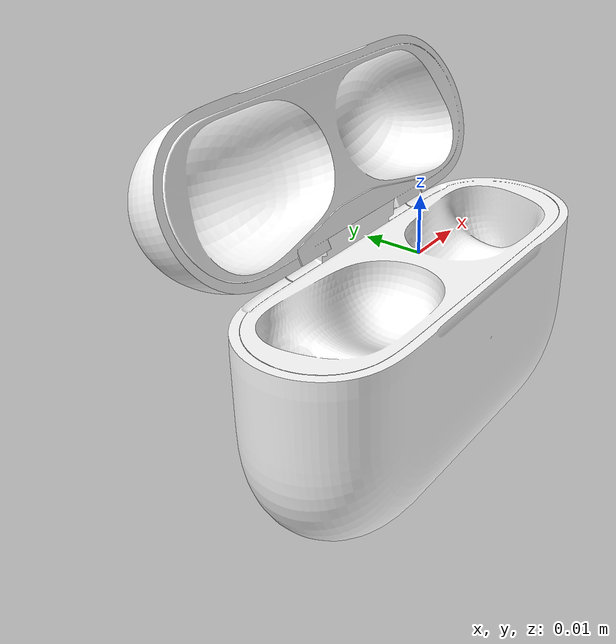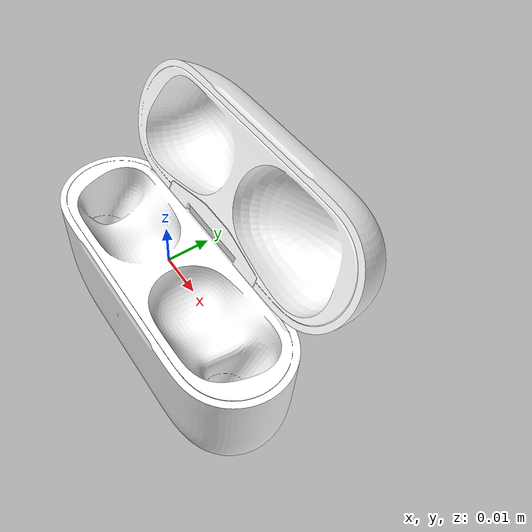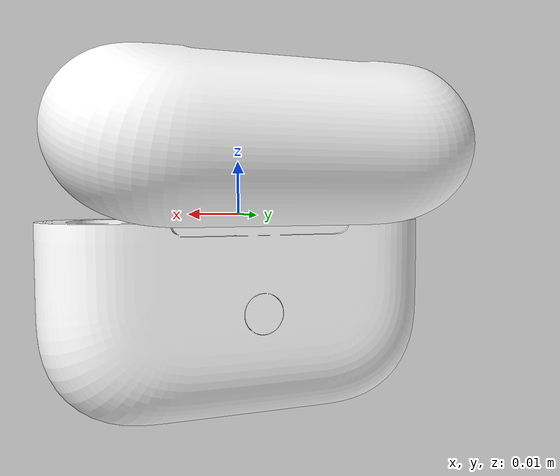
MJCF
<mujoco model="airpods_case">

  <compiler angle="radian" meshdir="assets" autolimits="true" eulerseq="xyz" />

  <default>
    <default class="airpods_visual">
      <geom group="2" type="mesh" contype="0" conaffinity="0"/>
    </default>
    <default class="airpods_collision">
      <geom group="3" type="mesh" conaffinity="2"/>
    </default>
  </default>

  <asset>
    <material name="material_0" specular="0.4000000000000001" shininess="0.001" rgba="1.00000000 1.00000000 1.00000000 1.0"/>
    <mesh file="bottom_case_resized_proper_1.obj" scale="0.5 0.5 0.5"/>
    <mesh file="bottom_case_resized_proper_1_collision_0.obj" scale="0.5 0.5 0.5"/>
    <mesh file="bottom_case_resized_proper_1_collision_1.obj" scale="0.5 0.5 0.5"/>
    <mesh file="bottom_case_resized_proper_1_collision_2.obj" scale="0.5 0.5 0.5"/>
    <mesh file="bottom_case_resized_proper_1_collision_3.obj" scale="0.5 0.5 0.5"/>
    <mesh file="bottom_case_resized_proper_1_collision_4.obj" scale="0.5 0.5 0.5"/>
    <mesh file="bottom_case_resized_proper_1_collision_5.obj" scale="0.5 0.5 0.5"/>
    <mesh file="bottom_case_resized_proper_1_collision_6.obj" scale="0.5 0.5 0.5"/>
    <mesh file="bottom_case_resized_proper_1_collision_7.obj" scale="0.5 0.5 0.5"/>
    <mesh file="bottom_case_resized_proper_1_collision_8.obj" scale="0.5 0.5 0.5"/>
    <mesh file="bottom_case_resized_proper_1_collision_9.obj" scale="0.5 0.5 0.5"/>
    <mesh file="bottom_case_resized_proper_1_collision_10.obj" scale="0.5 0.5 0.5"/>
    <mesh file="bottom_case_resized_proper_1_collision_11.obj" scale="0.5 0.5 0.5"/>
    <mesh file="bottom_case_resized_proper_1_collision_12.obj" scale="0.5 0.5 0.5"/>
    <mesh file="bottom_case_resized_proper_1_collision_13.obj" scale="0.5 0.5 0.5"/>
    <mesh file="bottom_case_resized_proper_1_collision_14.obj" scale="0.5 0.5 0.5"/>
    <mesh file="bottom_case_resized_proper_1_collision_15.obj" scale="0.5 0.5 0.5"/>
    <mesh file="bottom_case_resized_proper_1_collision_16.obj" scale="0.5 0.5 0.5"/>
    <mesh file="bottom_case_resized_proper_1_collision_17.obj" scale="0.5 0.5 0.5"/>
    <mesh file="bottom_case_resized_proper_1_collision_18.obj" scale="0.5 0.5 0.5"/>
    <mesh file="bottom_case_resized_proper_1_collision_19.obj" scale="0.5 0.5 0.5"/>
    <mesh file="bottom_case_resized_proper_1_collision_20.obj" scale="0.5 0.5 0.5"/>
    <mesh file="bottom_case_resized_proper_1_collision_21.obj" scale="0.5 0.5 0.5"/>
    <mesh file="bottom_case_resized_proper_1_collision_22.obj" scale="0.5 0.5 0.5"/>
    <mesh file="bottom_case_resized_proper_1_collision_23.obj" scale="0.5 0.5 0.5"/>
    <mesh file="bottom_case_resized_proper_1_collision_24.obj" scale="0.5 0.5 0.5"/>
    <mesh file="bottom_case_resized_proper_1_collision_25.obj" scale="0.5 0.5 0.5"/>
    <mesh file="bottom_case_resized_proper_1_collision_26.obj" scale="0.5 0.5 0.5"/>
    <mesh file="bottom_case_resized_proper_1_collision_27.obj" scale="0.5 0.5 0.5"/>
    <mesh file="bottom_case_resized_proper_1_collision_28.obj" scale="0.5 0.5 0.5"/>
    <mesh file="bottom_case_resized_proper_1_collision_29.obj" scale="0.5 0.5 0.5"/>
    <mesh file="bottom_case_resized_proper_1_collision_30.obj" scale="0.5 0.5 0.5"/>
    <mesh file="bottom_case_resized_proper_1_collision_31.obj" scale="0.5 0.5 0.5"/>
    <mesh file="bottom_case_resized_proper_1_collision_32.obj" scale="0.5 0.5 0.5"/>
    <mesh file="bottom_case_resized_proper_1_collision_33.obj" scale="0.5 0.5 0.5"/>
    <mesh file="bottom_case_resized_proper_1_collision_34.obj" scale="0.5 0.5 0.5"/>
    <mesh file="bottom_case_resized_proper_1_collision_35.obj" scale="0.5 0.5 0.5"/>
    <mesh file="bottom_case_resized_proper_1_collision_36.obj" scale="0.5 0.5 0.5"/>
    <mesh file="bottom_case_resized_proper_1_collision_37.obj" scale="0.5 0.5 0.5"/>
    <mesh file="bottom_case_resized_proper_1_collision_38.obj" scale="0.5 0.5 0.5"/>
    <mesh file="bottom_case_resized_proper_1_collision_39.obj" scale="0.5 0.5 0.5"/>
    <mesh file="bottom_case_resized_proper_1_collision_40.obj" scale="0.5 0.5 0.5"/>
    <mesh file="bottom_case_resized_proper_1_collision_41.obj" scale="0.5 0.5 0.5"/>
    <mesh file="bottom_case_resized_proper_1_collision_42.obj" scale="0.5 0.5 0.5"/>
    <mesh file="bottom_case_resized_proper_1_collision_43.obj" scale="0.5 0.5 0.5"/>
    <mesh file="bottom_case_resized_proper_1_collision_44.obj" scale="0.5 0.5 0.5"/>
    <mesh file="bottom_case_resized_proper_1_collision_45.obj" scale="0.5 0.5 0.5"/>
    <mesh file="upper_case_resized_proper_1.obj" scale="0.5 0.5 0.5"/>
    <mesh file="upper_case_resized_proper_1_collision_0.obj" scale="0.5 0.5 0.5"/>
    <mesh file="upper_case_resized_proper_1_collision_1.obj" scale="0.5 0.5 0.5"/>
    <mesh file="upper_case_resized_proper_1_collision_2.obj" scale="0.5 0.5 0.5"/>
    <mesh file="upper_case_resized_proper_1_collision_3.obj" scale="0.5 0.5 0.5"/>
    <mesh file="upper_case_resized_proper_1_collision_4.obj" scale="0.5 0.5 0.5"/>
    <mesh file="upper_case_resized_proper_1_collision_5.obj" scale="0.5 0.5 0.5"/>
    <mesh file="upper_case_resized_proper_1_collision_6.obj" scale="0.5 0.5 0.5"/>
    <mesh file="upper_case_resized_proper_1_collision_7.obj" scale="0.5 0.5 0.5"/>
    <mesh file="upper_case_resized_proper_1_collision_8.obj" scale="0.5 0.5 0.5"/>
    <mesh file="upper_case_resized_proper_1_collision_9.obj" scale="0.5 0.5 0.5"/>
    <mesh file="upper_case_resized_proper_1_collision_10.obj" scale="0.5 0.5 0.5"/>
    <mesh file="upper_case_resized_proper_1_collision_11.obj" scale="0.5 0.5 0.5"/>
    <mesh file="upper_case_resized_proper_1_collision_12.obj" scale="0.5 0.5 0.5"/>
    <mesh file="upper_case_resized_proper_1_collision_13.obj" scale="0.5 0.5 0.5"/>
    <mesh file="upper_case_resized_proper_1_collision_14.obj" scale="0.5 0.5 0.5"/>
    <mesh file="upper_case_resized_proper_1_collision_15.obj" scale="0.5 0.5 0.5"/>
    <mesh file="upper_case_resized_proper_1_collision_16.obj" scale="0.5 0.5 0.5"/>
    <mesh file="upper_case_resized_proper_1_collision_17.obj" scale="0.5 0.5 0.5"/>
    <mesh file="upper_case_resized_proper_1_collision_18.obj" scale="0.5 0.5 0.5"/>
    <mesh file="upper_case_resized_proper_1_collision_19.obj" scale="0.5 0.5 0.5"/>
    <mesh file="upper_case_resized_proper_1_collision_20.obj" scale="0.5 0.5 0.5"/>
    <mesh file="upper_case_resized_proper_1_collision_21.obj" scale="0.5 0.5 0.5"/>
    <mesh file="upper_case_resized_proper_1_collision_22.obj" scale="0.5 0.5 0.5"/>
    <mesh file="upper_case_resized_proper_1_collision_23.obj" scale="0.5 0.5 0.5"/>
    <mesh file="upper_case_resized_proper_1_collision_24.obj" scale="0.5 0.5 0.5"/>
    <mesh file="upper_case_resized_proper_1_collision_25.obj" scale="0.5 0.5 0.5"/>
    <mesh file="upper_case_resized_proper_1_collision_26.obj" scale="0.5 0.5 0.5"/>
    <mesh file="upper_case_resized_proper_1_collision_27.obj" scale="0.5 0.5 0.5"/>
    <mesh file="upper_case_resized_proper_1_collision_28.obj" scale="0.5 0.5 0.5"/>
    <mesh file="upper_case_resized_proper_1_collision_29.obj" scale="0.5 0.5 0.5"/>
    <mesh file="upper_case_resized_proper_1_collision_30.obj" scale="0.5 0.5 0.5"/>
    <mesh file="upper_case_resized_proper_1_collision_31.obj" scale="0.5 0.5 0.5"/>
    <mesh file="upper_case_resized_proper_1_collision_32.obj" scale="0.5 0.5 0.5"/>
    <mesh file="upper_case_resized_proper_1_collision_33.obj" scale="0.5 0.5 0.5"/>
    <mesh file="upper_case_resized_proper_1_collision_34.obj" scale="0.5 0.5 0.5"/>
    <mesh file="upper_case_resized_proper_1_collision_35.obj" scale="0.5 0.5 0.5"/>
    <mesh file="upper_case_resized_proper_1_collision_36.obj" scale="0.5 0.5 0.5"/>
    <mesh file="upper_case_resized_proper_1_collision_37.obj" scale="0.5 0.5 0.5"/>
  </asset>

  <worldbody>
    <body name="bottom_case_resized_proper" euler="3.141592 0 0 ">
      <freejoint/>
      <geom material="material_0" mesh="bottom_case_resized_proper_1" class="airpods_visual"/>
      <geom mesh="bottom_case_resized_proper_1_collision_0" rgba="0.2785742524361745 0.4521811568731291 0.034637497642885706 1" class="airpods_collision"/>
      <geom mesh="bottom_case_resized_proper_1_collision_1" rgba="0.39219067580243094 0.4882786598197322 0.7713645759992812 1" class="airpods_collision"/>
      <geom mesh="bottom_case_resized_proper_1_collision_2" rgba="0.5806726609660999 0.12467068295680495 0.1303841166073325 1" class="airpods_collision"/>
      <geom mesh="bottom_case_resized_proper_1_collision_3" rgba="0.3298261933137705 0.7767136226077102 0.5235492765502833 1" class="airpods_collision"/>
      <geom mesh="bottom_case_resized_proper_1_collision_4" rgba="0.33726044356108575 0.11043030471619275 0.48913344480899446 1" class="airpods_collision"/>
      <geom mesh="bottom_case_resized_proper_1_collision_5" rgba="0.2569979979536394 0.5830792322413944 0.4148395491653021 1" class="airpods_collision"/>
      <geom mesh="bottom_case_resized_proper_1_collision_6" rgba="0.8416885904616718 0.29304446513107707 0.5455876545563133 1" class="airpods_collision"/>
      <geom mesh="bottom_case_resized_proper_1_collision_7" rgba="0.4356848876436553 0.9040845848676617 0.3701698288631785 1" class="airpods_collision"/>
      <geom mesh="bottom_case_resized_proper_1_collision_8" rgba="0.5550230600706484 0.43865260273743434 0.6123402778296112 1" class="airpods_collision"/>
      <geom mesh="bottom_case_resized_proper_1_collision_9" rgba="0.42748770399228697 0.8167733591986555 0.40889427186676985 1" class="airpods_collision"/>
      <geom mesh="bottom_case_resized_proper_1_collision_10" rgba="0.17685442377432792 0.36658448828655565 0.912259453574502 1" class="airpods_collision"/>
      <geom mesh="bottom_case_resized_proper_1_collision_11" rgba="0.2799095927491859 0.3761654832244987 0.9534423262108387 1" class="airpods_collision"/>
      <geom mesh="bottom_case_resized_proper_1_collision_12" rgba="0.3540203273409035 0.8247025831717465 0.40814024994487297 1" class="airpods_collision"/>
      <geom mesh="bottom_case_resized_proper_1_collision_13" rgba="0.40794811723362 0.8928191842595968 0.17208809617641063 1" class="airpods_collision"/>
      <geom mesh="bottom_case_resized_proper_1_collision_14" rgba="0.3442084905987348 0.3234281727529813 0.4146705523015549 1" class="airpods_collision"/>
      <geom mesh="bottom_case_resized_proper_1_collision_15" rgba="0.3945732083323078 0.6141168978354339 0.9030722649934739 1" class="airpods_collision"/>
      <geom mesh="bottom_case_resized_proper_1_collision_16" rgba="0.6656442942284853 0.6355694805501362 0.2655977174350499 1" class="airpods_collision"/>
      <geom mesh="bottom_case_resized_proper_1_collision_17" rgba="0.3903199875609613 0.8947099677840887 0.8497240335165984 1" class="airpods_collision"/>
      <geom mesh="bottom_case_resized_proper_1_collision_18" rgba="0.43103980501356554 0.14147856499352252 0.9142524069293189 1" class="airpods_collision"/>
      <geom mesh="bottom_case_resized_proper_1_collision_19" rgba="0.4580960675695853 0.9175751387580899 0.027916514114781465 1" class="airpods_collision"/>
      <geom mesh="bottom_case_resized_proper_1_collision_20" rgba="0.8942811467979311 0.6511221072416649 0.7862607352530782 1" class="airpods_collision"/>
      <geom mesh="bottom_case_resized_proper_1_collision_21" rgba="0.5773700020965864 0.0780039679692085 0.3351161511222056 1" class="airpods_collision"/>
      <geom mesh="bottom_case_resized_proper_1_collision_22" rgba="0.5796512564674818 0.8234430813376643 0.3145637007570318 1" class="airpods_collision"/>
      <geom mesh="bottom_case_resized_proper_1_collision_23" rgba="0.05139206104780858 0.18108112219228023 0.8796720206212871 1" class="airpods_collision"/>
      <geom mesh="bottom_case_resized_proper_1_collision_24" rgba="0.4824818349832246 0.2287195443960166 0.3561679543607875 1" class="airpods_collision"/>
      <geom mesh="bottom_case_resized_proper_1_collision_25" rgba="0.5277226951764112 0.5489724025260139 0.46679982738742787 1" class="airpods_collision"/>
      <geom mesh="bottom_case_resized_proper_1_collision_26" rgba="0.9010616803541345 0.8785743950795093 0.5185985490754643 1" class="airpods_collision"/>
      <geom mesh="bottom_case_resized_proper_1_collision_27" rgba="0.8049536947966477 0.26056665206500607 0.058602853523571974 1" class="airpods_collision"/>
      <geom mesh="bottom_case_resized_proper_1_collision_28" rgba="0.18234986777132212 0.4152042407976342 0.5324472944231049 1" class="airpods_collision"/>
      <geom mesh="bottom_case_resized_proper_1_collision_29" rgba="0.6587876179315255 0.5819444906289504 0.7493206397489974 1" class="airpods_collision"/>
      <geom mesh="bottom_case_resized_proper_1_collision_30" rgba="0.3386931558231522 0.15421120355531726 0.19051853380922346 1" class="airpods_collision"/>
      <geom mesh="bottom_case_resized_proper_1_collision_31" rgba="0.451700430342599 0.7638292599807477 0.18479495891501452 1" class="airpods_collision"/>
      <geom mesh="bottom_case_resized_proper_1_collision_32" rgba="0.03214583218780942 0.6076673386520831 0.6790354955068008 1" class="airpods_collision"/>
      <geom mesh="bottom_case_resized_proper_1_collision_33" rgba="0.2924834529171485 0.18901570197683737 0.5327175815101799 1" class="airpods_collision"/>
      <geom mesh="bottom_case_resized_proper_1_collision_34" rgba="0.7722844581187618 0.7509850485528016 0.7880939726510545 1" class="airpods_collision"/>
      <geom mesh="bottom_case_resized_proper_1_collision_35" rgba="0.36986425001565737 0.9666532863959838 0.912220539143618 1" class="airpods_collision"/>
      <geom mesh="bottom_case_resized_proper_1_collision_36" rgba="0.42539911983276824 0.4590297574922566 0.6500399394733405 1" class="airpods_collision"/>
      <geom mesh="bottom_case_resized_proper_1_collision_37" rgba="0.22623922307023248 0.6432274410737547 0.07928761990940203 1" class="airpods_collision"/>
      <geom mesh="bottom_case_resized_proper_1_collision_38" rgba="0.42718967341833414 0.11334513882556319 0.5024157108229323 1" class="airpods_collision"/>
      <geom mesh="bottom_case_resized_proper_1_collision_39" rgba="0.9728552389432507 0.6725255061527169 0.18670551039726424 1" class="airpods_collision"/>
      <geom mesh="bottom_case_resized_proper_1_collision_40" rgba="0.4933327990017322 0.5497509331064641 0.8919845925169463 1" class="airpods_collision"/>
      <geom mesh="bottom_case_resized_proper_1_collision_41" rgba="0.6454682011329784 0.8613864440656798 0.09037156067983565 1" class="airpods_collision"/>
      <geom mesh="bottom_case_resized_proper_1_collision_42" rgba="0.40083074200010416 0.8258181488260872 0.43329709723225285 1" class="airpods_collision"/>
      <geom mesh="bottom_case_resized_proper_1_collision_43" rgba="0.8742288756183914 0.583023764935039 0.6649927643603664 1" class="airpods_collision"/>
      <geom mesh="bottom_case_resized_proper_1_collision_44" rgba="0.5253728056059104 0.46202049959309277 0.7738161506860283 1" class="airpods_collision"/>
      <geom mesh="bottom_case_resized_proper_1_collision_45" rgba="0.36246998093791916 0.18338067218167065 0.2601301431945454 1" class="airpods_collision"/>

        <body name="upper_case_resized_proper">
          <joint axis="1 0 0" name="joint_upper_case_resized_proper"  pos="0 -0.0125 -0.0015" range="-0.15 2" frictionloss="1" springdamper="0 0" springref="2"/>
          <body name="upper_case_meshes" pos="0 -0.0006 -0.0001">
            <geom material="material_0" mesh="upper_case_resized_proper_1" class="airpods_visual"/>
            <geom mesh="upper_case_resized_proper_1_collision_0" rgba="0.16641449419337795 0.5203667368178123 0.15096410292867302 1" class="airpods_collision"/>
            <geom mesh="upper_case_resized_proper_1_collision_1" rgba="0.49038146800301086 0.36295352190150143 0.4848476773631629 1" class="airpods_collision"/>
            <geom mesh="upper_case_resized_proper_1_collision_2" rgba="0.6845946820868736 0.8397405974385738 0.934371534976638 1" class="airpods_collision"/>
            <geom mesh="upper_case_resized_proper_1_collision_3" rgba="0.6751710943004179 0.12483871680324987 0.4122171204543782 1" class="airpods_collision"/>
            <geom mesh="upper_case_resized_proper_1_collision_4" rgba="0.5348062273053661 0.5657136825680666 0.45449387376618033 1" class="airpods_collision"/>
            <geom mesh="upper_case_resized_proper_1_collision_5" rgba="0.9978664195416785 0.9138384897468755 0.23683357303070607 1" class="airpods_collision"/>
            <geom mesh="upper_case_resized_proper_1_collision_6" rgba="0.8821088038888262 0.5642813591305371 0.21119419709639942 1" class="airpods_collision"/>
            <geom mesh="upper_case_resized_proper_1_collision_7" rgba="0.2330041505080762 0.35952783307735103 0.12103817136808681 1" class="airpods_collision"/>
            <geom mesh="upper_case_resized_proper_1_collision_8" rgba="0.5683966076857302 0.40785505920284015 0.949029185451127 1" class="airpods_collision"/>
            <geom mesh="upper_case_resized_proper_1_collision_9" rgba="0.03792492656973623 0.36082335699118284 0.16860739101938682 1" class="airpods_collision"/>
            <geom mesh="upper_case_resized_proper_1_collision_10" rgba="0.5501550157502942 0.5971139650926999 0.12303014924869549 1" class="airpods_collision"/>
            <geom mesh="upper_case_resized_proper_1_collision_11" rgba="0.6414045303921123 0.275650417648155 0.7730518534065047 1" class="airpods_collision"/>
            <geom mesh="upper_case_resized_proper_1_collision_12" rgba="0.49687225143540414 0.9878812149121592 0.12169212716199973 1" class="airpods_collision"/>
            <geom mesh="upper_case_resized_proper_1_collision_13" rgba="0.9300982544623366 0.8198426140923706 0.04662121427136956 1" class="airpods_collision"/>
            <geom mesh="upper_case_resized_proper_1_collision_14" rgba="0.35127561944138863 0.6242797628965239 0.5236915847529005 1" class="airpods_collision"/>
            <geom mesh="upper_case_resized_proper_1_collision_15" rgba="0.8794213375379165 0.6987973434412341 0.4106984157172213 1" class="airpods_collision"/>
            <geom mesh="upper_case_resized_proper_1_collision_16" rgba="0.14661599596067232 0.1439547447206645 0.9487112159181388 1" class="airpods_collision"/>
            <geom mesh="upper_case_resized_proper_1_collision_17" rgba="0.6504028626216352 0.9121014006379587 0.25949020927540756 1" class="airpods_collision"/>
            <geom mesh="upper_case_resized_proper_1_collision_18" rgba="0.4854831087631317 0.43647017272027255 0.41923475441241365 1" class="airpods_collision"/>
            <geom mesh="upper_case_resized_proper_1_collision_19" rgba="0.32935232364930545 0.8670591292000998 0.1692982104898969 1" class="airpods_collision"/>
            <geom mesh="upper_case_resized_proper_1_collision_20" rgba="0.3924865202314005 0.9773694189280938 0.4226785112458358 1" class="airpods_collision"/>
            <geom mesh="upper_case_resized_proper_1_collision_21" rgba="0.974236782468711 0.5577675930636788 0.320519174902384 1" class="airpods_collision"/>
            <geom mesh="upper_case_resized_proper_1_collision_22" rgba="0.5951996096633179 0.31490315650087564 0.6376582484455625 1" class="airpods_collision"/>
            <geom mesh="upper_case_resized_proper_1_collision_23" rgba="0.725234489211007 0.6234164211105417 0.5805514432596621 1" class="airpods_collision"/>
            <geom mesh="upper_case_resized_proper_1_collision_24" rgba="0.9290080444954761 0.5846302725189784 0.7365929698883437 1" class="airpods_collision"/>
            <geom mesh="upper_case_resized_proper_1_collision_25" rgba="0.5587565907895005 0.16893003975484167 0.78898905214999 1" class="airpods_collision"/>
            <geom mesh="upper_case_resized_proper_1_collision_26" rgba="0.18839106340771405 0.21626709013868461 0.6604223346307158 1" class="airpods_collision"/>
            <geom mesh="upper_case_resized_proper_1_collision_27" rgba="0.6929834937430281 0.7222050085232717 0.5802316920547035 1" class="airpods_collision"/>
            <geom mesh="upper_case_resized_proper_1_collision_28" rgba="0.5916480875155412 0.17976321511793436 0.3432950666527258 1" class="airpods_collision"/>
            <geom mesh="upper_case_resized_proper_1_collision_29" rgba="0.824492508276539 0.27982696453692035 0.23952287417101015 1" class="airpods_collision"/>
            <geom mesh="upper_case_resized_proper_1_collision_30" rgba="0.637348643770558 0.5130708466021244 0.7034186061873041 1" class="airpods_collision"/>
            <geom mesh="upper_case_resized_proper_1_collision_31" rgba="0.9763615225442783 0.8268250121596682 0.8740483981962234 1" class="airpods_collision"/>
            <geom mesh="upper_case_resized_proper_1_collision_32" rgba="0.6899856997707461 0.30021231222339695 0.8688514759450497 1" class="airpods_collision"/>
            <geom mesh="upper_case_resized_proper_1_collision_33" rgba="0.7179125059048967 0.4589529796481757 0.6545849370676837 1" class="airpods_collision"/>
            <geom mesh="upper_case_resized_proper_1_collision_34" rgba="0.4159974592378676 0.035983246886154396 0.35246303544230606 1" class="airpods_collision"/>
            <geom mesh="upper_case_resized_proper_1_collision_35" rgba="0.5378769865268784 0.42645974700157674 0.37903089286835967 1" class="airpods_collision"/>
            <geom mesh="upper_case_resized_proper_1_collision_36" rgba="0.4795603717628898 0.3981354624346941 0.9036373339160372 1" class="airpods_collision"/>
            <geom mesh="upper_case_resized_proper_1_collision_37" rgba="0.5015764856315549 0.919401551546054 0.008791750459092862 1" class="airpods_collision"/>
          </body>
        </body>
    </body>
  </worldbody>

</mujoco>
